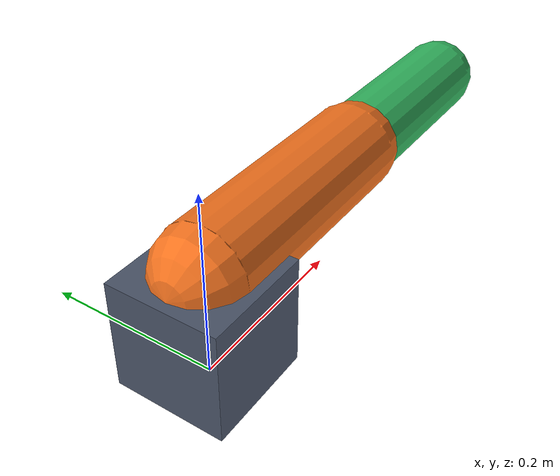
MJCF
<mujoco model="art_arm">
  <compiler angle="radian"/>
  <option gravity="0 0 -9.81"/>
  <worldbody>
    <body name="base" pos="0 0 0.06">
      <geom type="box" size="0.06 0.06 0.06" rgba="0.30 0.34 0.42 1"/>
      <body name="link1" pos="0 0 0.06">
        <joint name="j1" type="hinge" axis="0 0 1" range="-2 2" limited="true" damping="4"/>
        <geom type="capsule" fromto="0 0 0 0.26 0 0" size="0.05" rgba="0.96 0.45 0.12 1"/>
        <body name="link2" pos="0.26 0 0">
          <joint name="j2" type="hinge" axis="0 1 0" range="-2 2" limited="true" damping="4"/>
          <geom type="capsule" fromto="0 0 0 0.22 0 0" size="0.044" rgba="0.20 0.72 0.38 1"/>
        </body>
      </body>
    </body>
  </worldbody>
  <actuator>
    <position name="a1" joint="j1" kp="60"/>
    <position name="a2" joint="j2" kp="60"/>
  </actuator>
</mujoco>
